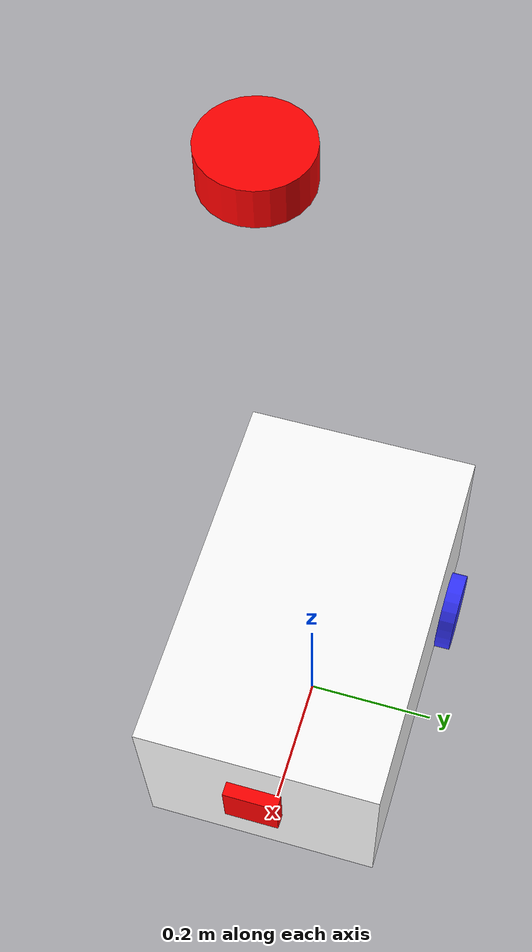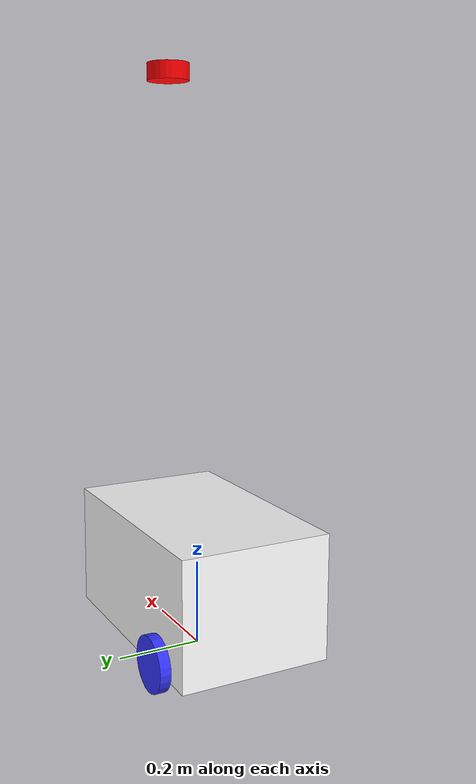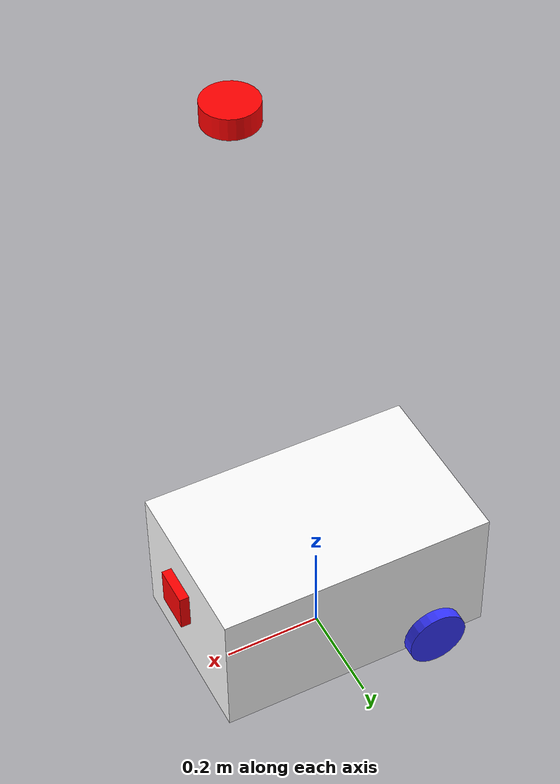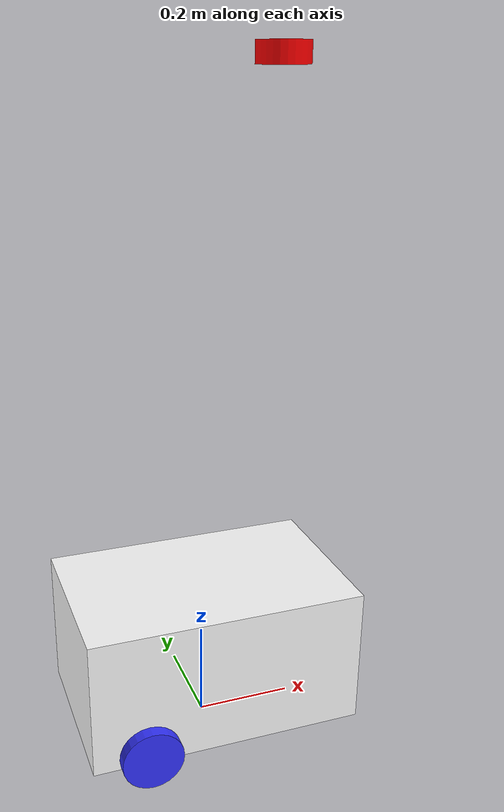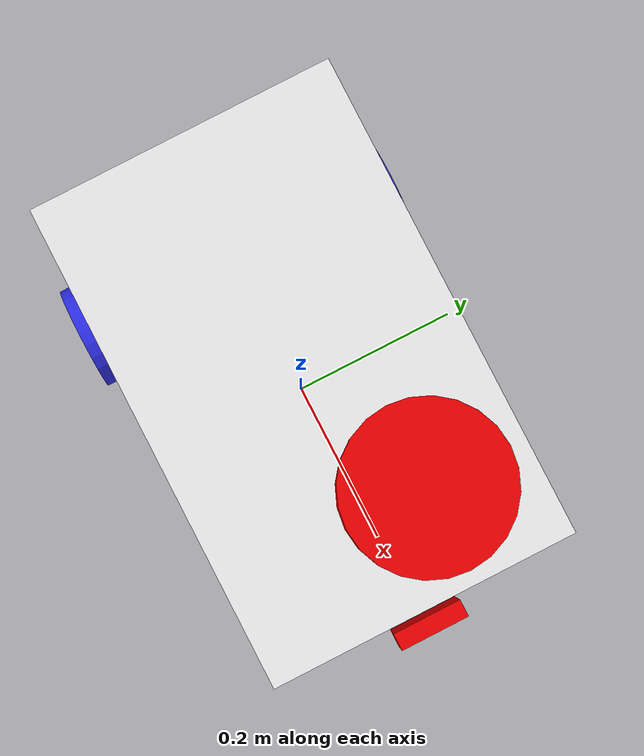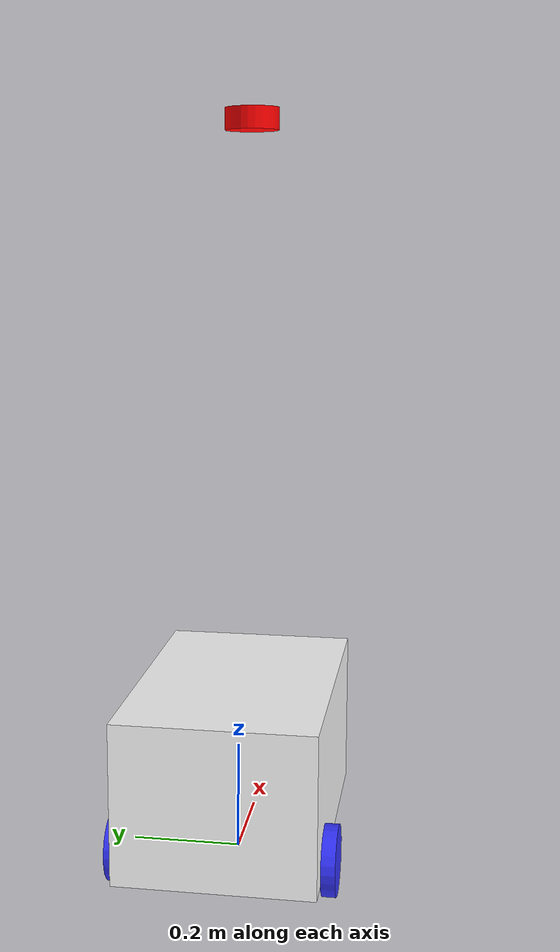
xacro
<?xml version="1.0"?>
<robot xmlns:xacro="http://www.ros.org/wiki/xacro"  name="robot">

    <xacro:arg name="use_ros2_controller" default="true"/>

    <xacro:include filename="robot_core.xacro" />

    <!-- Choose btw ros2 control and gazebo control -->
    <xacro:if value="$(arg use_ros2_controller)">
        <xacro:include filename="ros2_control.xacro"/>
    </xacro:if>

    <xacro:unless value="$(arg use_ros2_controller)">
        <xacro:include filename="gazebo_control.xacro" />
    </xacro:unless>

    <xacro:include filename="lidar.xacro"/>

    <xacro:include filename="depth_camera.xacro"/>

</robot>

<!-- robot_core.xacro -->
<robot xmlns:xacro="http://www.ros.org/wiki/xacro" >

    <xacro:include filename="inertial_macros.xacro"/>

    <!-- MATERIALS -->

    <material name="white">
        <color rgba="1 1 1 1"/>
    </material>

    <material name="orange">
        <color rgba="1 0.3 0.1 1"/>
    </material>

    <material name="blue">
        <color rgba="0.2 0.2 1 1"/>
    </material>

    <material name="black">
        <color rgba="0 0 0 1"/>
    </material>

    <material name="red">
        <color rgba="1 0 0 1"/>
    </material>

    <!-- BASE LINK -->

    <link name="base_link">

    </link>

    <!-- BASE FOOTPRINT LINK -->
    <joint name="base_footprint_joint" type="fixed">
        <parent link="base_link"/>
        <child link="base_footprint"/>
        <origin xyz="0 0 0" rpy="0 0 0"/>
    </joint>

    <link name="base_footprint">

    </link>

    <!-- CHASSIS LINK -->

    <joint name="chassis_joint" type="fixed">
        <parent link="base_link"/>
        <child link="chassis"/>
        <origin xyz="0 0 0"/>
    </joint>

    <link name="chassis">
        <visual>
            <origin xyz="0 0 0.185"/>
            <geometry>
                <box size="0.565 0.355 0.29"/>
            </geometry>
            <material name="white"/>
        </visual>
        <collision>
            <origin xyz="0 0 0.15375"/>
            <geometry>
                <box size="0.565 0.355 0.29"/>
            </geometry>
        </collision>
        <xacro:inertial_box mass="0.5" x="0.565" y="0.355" z="0.29">
            <origin xyz="0 0 0.15375" rpy="0 0 0"/>
        </xacro:inertial_box>
    </link>

    <gazebo reference="chassis">
        <material>Gazebo/White</material>
    </gazebo>

    <!-- FOR NOW NO FRICTION -->
    <!-- LEFT CASTER WHEEL LINK -->
    <joint name="left_caster_wheel_joint" type="fixed">
        <parent link="chassis"/>
        <child link="left_caster_wheel"/>
        <origin xyz="0.1925 0.1025 0.025"/>
    </joint>

    <link name="left_caster_wheel">
        <visual>
            <geometry>
                <sphere radius="0.025"/>
            </geometry>
            <material name="black"/>
        </visual>
    </link>

    <gazebo reference="left_caster_wheel">
        <material>Gazebo/Black</material>
        <mu1 value="0.01"/>
        <mu2 value="0.01"/>
    </gazebo>

    <!-- RIGHT CASTER WHEEL LINK -->
    <joint name="right_caster_wheel_joint" type="fixed">
        <parent link="chassis"/>
        <child link="right_caster_wheel"/>
        <origin xyz="0.1925 -0.1025 0.025"/>
    </joint>

    <link name="right_caster_wheel">
        <visual>
            <geometry>
                <sphere radius="0.025"/>
            </geometry>
            <material name="black"/>
        </visual>
    </link>

    <gazebo reference="right_caster_wheel">
        <material>Gazebo/Black</material>
        <mu1 value="0.01"/>
        <mu2 value="0.01"/>
    </gazebo>

    <!-- LEFT BACK WHEEL LINK-->

    <joint name="left_back_wheel_joint" type="continuous">
        <parent link="base_link"/>
        <child link="left_back_wheel"/>
        <origin xyz="-0.1675 0.19 0.0625" rpy="-${pi/2} 0 0"/>
        <axis xyz="0 0 1"/>
    </joint>

    <link name="left_back_wheel">
        <visual>
            <geometry>
                <cylinder radius="0.0625" length="0.025"/>
            </geometry>
            <material name="blue"/>
        </visual>
        <collision>
            <geometry>
                <cylinder radius="0.0625" length="0.025"/>
            </geometry>
        </collision>
        <xacro:inertial_cylinder mass="0.1" length="0.0625" radius="0.025">
            <origin xyz="0 0 0" rpy="0 0 0"/>
        </xacro:inertial_cylinder>
    </link>

    <gazebo reference="left_back_wheel">
        <material>Gazebo/Blue</material>
    </gazebo>

    <!-- RIGHT BACK WHEEL LINK-->

    <joint name="right_back_wheel_joint" type="continuous">
        <parent link="base_link"/>
        <child link="right_back_wheel"/>
        <origin xyz="-0.1675 -0.19 0.0625" rpy="${pi/2} 0 0"/>
        <axis xyz="0 0 -1"/>
    </joint>

    <link name="right_back_wheel">
        <visual>
            <geometry>
                <cylinder radius="0.0625" length="0.025"/>
            </geometry>
            <material name="blue"/>
        </visual>
        <collision>
            <geometry>
                <cylinder radius="0.0625" length="0.025"/>
            </geometry>
        </collision>
        <xacro:inertial_cylinder mass="0.1" length="0.0625" radius="0.025">
            <origin xyz="0 0 0" rpy="0 0 0"/>
        </xacro:inertial_cylinder>
    </link>

    <gazebo reference="right_back_wheel">
        <material>Gazebo/Blue</material>
    </gazebo>

</robot>

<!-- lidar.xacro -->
<robot xmlns:xacro="http://www.ros.org/wiki/xacro"  name="robot">

    <!-- Creation of LiDAR Component In Simulation -->

    <joint name="lidar_joint" type="fixed">
        <parent link="base_link"/>
        <child link="laser_link"/>
        <origin xyz="0.15 0 1.34" rpy="0 0 0"/>
    </joint>

    <link name="laser_link">
        <visual>
            <geometry>
                <cylinder radius="0.05" length="0.04"/>
            </geometry>
            <material name="red"/>
        </visual>
        <collision>
            <geometry>
                <cylinder radius="0.05" length="0.03"/>
            </geometry>
        </collision>
        <xacro:inertial_cylinder mass="0.0" length="0.03" radius="0.05">
            <origin xyz="0 0 0" rpy="0 0 0"/>
        </xacro:inertial_cylinder>
    </link>

    <!-- LiDAR Gazebo Simulation Information -->

    <gazebo reference="laser_link">
        <material>Gazebo/Red</material>

        <sensor name="lidar" type="ray"> <!-- Ray Sensor -->
            <pose>0 0 0 0 0 0</pose> <!-- Origin of Virtual Sensor is Origin of Link -->
            <visualize>true</visualize>
            <update_rate>5</update_rate> <!-- 10 Times / Sec -->
            <ray>
                <scan>
                    <horizontal>
                        <samples>300</samples>
                        <min_angle>-3.14</min_angle> <!-- In Rads -->
                        <max_angle>3.14</max_angle>
                    </horizontal>
                </scan>
                <range>
                    <min>0.3</min> <!-- Min 300 mm-->
                    <max>12</max> <!-- Max 12 m -->
                </range>
            </ray>
            <plugin name="lidar_sensor" filename="libgazebo_ros_ray_sensor.so"> <!-- Plugin That Takes Ray Sensor And Let It Talk To Ros -->
                    <useSimTime>true</useSimTime>
                    <ros>
                        <argument>~/out:=scan</argument> <!-- Publish To This Topic -->
                    </ros>
                <frame_name>laser_link</frame_name> <!-- Output Type to Publish -->
                <output_type>sensor_msgs/LaserScan</output_type> <!-- Frame ID for Scan Msg -->
            </plugin>
        </sensor>
    </gazebo>

</robot>

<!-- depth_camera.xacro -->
<robot xmlns:xacro="http://www.ros.org/wiki/xacro"  name="robot">

    <!-- Creation of Depth Camera Component In Simulation -->

    <joint name="camera_joint" type="fixed">
        <parent link="base_link"/>
        <child link="camera_link"/>
        <origin xyz="0.3025 0 0.24" rpy="0 0 0"/>
    </joint>

    <link name="camera_link">
        <visual>
            <geometry>
                <box size="0.02 0.08 0.08"/>
            </geometry>
            <material name="red"/>
        </visual>
        <collision>
            <geometry>
                <box size="0.02 0.08 0.08"/>
            </geometry>
        </collision>
        <xacro:inertial_box mass="0.1" x="0.02" y="0.08" z="0.08">
            <origin xyz="0 0 0" rpy="0 0 0"/>
        </xacro:inertial_box>
    </link>

    <!-- Convert From Ros Coordinate System to Standard System -->

    <joint name="camera_optical_joint" type="fixed">
        <parent link="camera_link"/>
        <child link="camera_link_optical"/>
        <origin xyz="0 0 0" rpy="${-pi/2} 0 ${-pi/2}"/>
    </joint>

    <link name="camera_link_optical"></link>

    <!-- Camera Gazebo Simulation Information -->

    <gazebo reference="camera_link">
        <material>Gazebo/Red</material>

        <sensor name="camera" type="depth"> <!-- Camera Sensor -->
            <pose>0 0 0 0 0 0</pose> <!-- Origin of Virtual Sensor is Origin of Link -->
            <visualize>false</visualize>
            <update_rate>30.0</update_rate> <!-- 10 Times / Sec -->
            <camera>
                <horizontal_fov>1.089</horizontal_fov> <!-- How Zoomed Pic Will Be -->
                <image>
                    <format>R8G8B8</format> <!-- RGB Format -->
                    <width>640</width>  <!-- Pixels -->
                    <height>480</height>  <!-- Pixels -->
                </image>
                <clip>
                    <near>0.05</near>  <!-- Min Range That Can See-->
                    <far>8.0</far>  <!-- Max Range That Can See-->
                </clip>
            </camera>
            <plugin name="depth_camera_controller" filename="libgazebo_ros_camera.so"> <!-- Plugin That Takes Camera Sensor And Let It Talk To Ros -->
                <baseline>0.2</baseline>
                <alwaysOn>true</alwaysOn>
                <updateRate>0.0</updateRate>
                <frame_name>camera_link_optical</frame_name>
                <pointCloudCutoff>0.5</pointCloudCutoff>
                <pointCloudCutoffMax>10.0</pointCloudCutoffMax>
                <distortionK1>0</distortionK1>
                <distortionK2>0</distortionK2>
                <distortionK3>0</distortionK3>
                <distortionT1>0</distortionT1>
                <distortionT2>0</distortionT2>
                <CxPrime>0</CxPrime>
                <Cx>0</Cx>
                <Cy>0</Cy>
                <focalLength>0</focalLength>
                <hackBaseline>0</hackBaseline>
                <useSimTime>true</useSimTime>
            </plugin>
        </sensor>

    </gazebo>

</robot>
